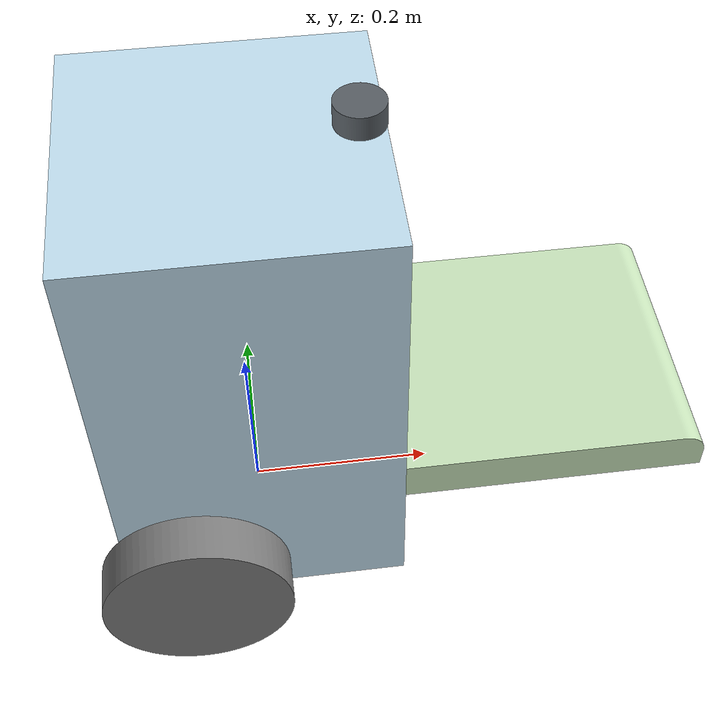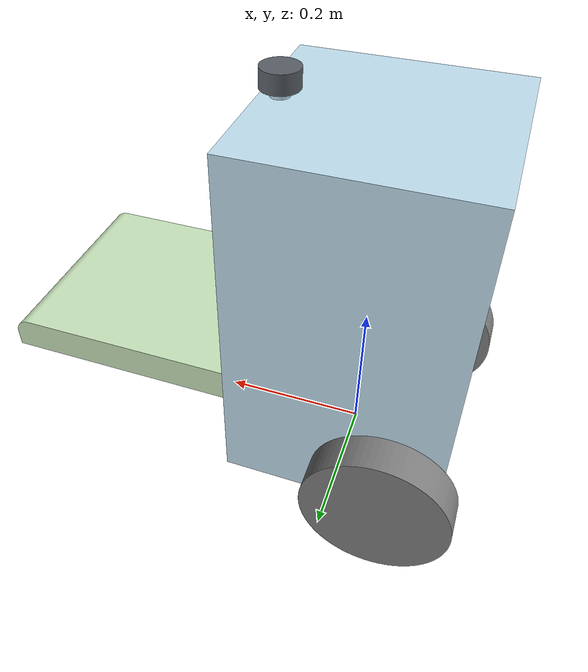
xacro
<robot name="DeliveryBot" xmlns:xacro="http://www.ros.org/wiki/xacro">
    <xacro:include filename="$(find deliverybot)/urdf/dbot_laser.gazebo"/>

    <link name="base_link">
    </link>
    <joint name="base_link_to_base" type="fixed">
        <parent link="base_link"/>
        <child link="body" />
        <origin xyz="0 0 0" rpy="0 0 1.5707" />
    </joint>
    <link name="body">
        <visual>
            <origin xyz="-5.55112e-17 -0.00273569 -0.05" rpy="0 -0 0" />
            <geometry>
                <mesh filename="package://deliverybot/urdf/meshes/body.stl"/>
            </geometry>
            <material name="body_material">
                <color rgba="0.768627 0.886275 0.952941 1.0"/>
            </material>
        </visual>
        <collision>
            <origin xyz="-5.55112e-17 -0.00273569 -0.05" rpy="0 -0 0" />
            <geometry>
                <mesh filename="package://deliverybot/urdf/meshes/body.stl"/>
            </geometry>
            <material name="body_material">
                <color rgba="0.768627 0.886275 0.952941 1.0"/>
            </material>
        </collision>
        <inertial>
            <origin xyz="7.95747e-17 0.0121391 0.137455" rpy="0 0 0"/>
            <mass value="9.21638" />
            <inertia ixx="0.266181" ixy="-3.31633e-16" ixz="-1.63779e-16" iyy="0.281274" iyz="-0.0141244" izz="0.161564" />
        </inertial>
    </link>

    <link name="left_wheel">
        <visual>
            <origin xyz="-0.075 -0.1 0.155" rpy="-1.5708 -1.5708 0" />
            <geometry>
                <mesh filename="package://deliverybot/urdf/meshes/left_wheel.stl"/>
            </geometry>
            <material name="left_wheel_material">
                <color rgba="0.498039 0.498039 0.498039 1.0"/>
            </material>
        </visual>
        <collision>
            <origin xyz="-0.075 -0.1 0.155" rpy="-1.5708 -1.5708 0" />
            <geometry>
                <mesh filename="package://deliverybot/urdf/meshes/left_wheel.stl"/>
            </geometry>
            <material name="left_wheel_material">
                <color rgba="0.498039 0.498039 0.498039 1.0"/>
            </material>
        </collision>
        <inertial>
            <origin xyz="8.32667e-18 0 -0.025" rpy="0 0 0"/>
            <mass value="1.65248" />
            <inertia ixx="0.00447546" ixy="-1.05108e-18" ixz="0" iyy="0.00826239" iyz="0" izz="0.00447546" />
        </inertial>
    </link>

    <joint name="joint_left_wheel" type="continuous">
        <origin xyz="0.155 0.0722643 0.05" rpy="0 -1.5708 0" /> <!-- rpy="-1.5708" -->
        <parent link="body" />
        <child link="left_wheel" />
        <axis xyz="0 0 -1"/>
        <limit effort="1" velocity="20" />
        <joint_properties friction="0.0"/>
    </joint>

    <link name="right_wheel">
        <visual>
            <origin xyz="-0.075 -0.1 -0.155" rpy="-1.5708 -1.5708 0" />
            <geometry>
                <mesh filename="package://deliverybot/urdf/meshes/right_wheel.stl"/>
            </geometry>
            <material name="left_wheel_material">
                <color rgba="0.498039 0.498039 0.498039 1.0"/>
            </material>
        </visual>
        <collision>
            <origin xyz="-0.075 -0.1 -0.155" rpy="-1.5708 -1.5708 0" />
            <geometry>
                <mesh filename="package://deliverybot/urdf/meshes/right_wheel.stl"/>
            </geometry>
            <material name="right_wheel_material">
                <color rgba="0.498039 0.498039 0.498039 1.0"/>
            </material>
        </collision>
        <inertial>
            <origin xyz="8.32667e-18 0 -0.025" rpy="0 0 0"/>
            <mass value="1.65248" />
            <inertia ixx="0.00447546" ixy="-1.05108e-18" ixz="0" iyy="0.00826239" iyz="0" izz="0.00447546" />
        </inertial>
    </link>

    <joint name="joint_right_wheel" type="continuous">
        <origin xyz="-0.155 0.0722643 0.05" rpy="0 -1.5708 0" /> <!-- rpy="-1.5708" -->
        <parent link="body" />
        <child link="right_wheel" />
        <axis xyz="0 0 -1"/>
        <limit effort="1" velocity="20" />
        <joint_properties friction="0.0"/>
    </joint>

    <link name="castor">
        <visual>
            <origin xyz="0 0.125 -0.025" rpy="0 -0 0" />
            <geometry>
                <mesh filename="package://deliverybot/urdf/meshes/castor.stl"/>
            </geometry>
            <material name="castor_material">
                <color rgba="0.960784 0.835294 0.470588 1.0"/>
            </material>
        </visual>
        <collision>
            <origin xyz="0 0.125 -0.025" rpy="0 -0 0" />
            <geometry>
                <mesh filename="package://deliverybot/urdf/meshes/castor.stl"/>
            </geometry>
            <material name="castor_material">
                <color rgba="0.960784 0.835294 0.470588 1.0"/>
            </material>
        </collision>
        <inertial>
            <origin xyz="0 0 3.46945e-18" rpy="0 0 0"/>
            <mass value="0.0688532" />
            <inertia ixx="1.72133e-05" ixy="0" ixz="0" iyy="1.72133e-05" iyz="0" izz="1.72133e-05" />
        </inertial>
    </link>

    <joint name="joint_castor" type="fixed">
        <origin xyz="-5.55112e-17 -0.127736 -0.025" rpy="0 -0 0" />
        <parent link="body" />
        <child link="castor" />
        <axis xyz="0 0 1"/>
        <limit effort="1" velocity="20" />
        <joint_properties friction="0.0"/>
    </joint>

    <link name="door">
        <visual>
            <origin xyz="0.127 -0.205 -0.145" rpy="-1.5708 -1.5708 0" />
            <geometry>
                <mesh filename="package://deliverybot/urdf/meshes/door.stl"/>
            </geometry>
            <material name="door_material">
                <color rgba="0.796078 0.905882 0.745098 1.0"/>
            </material>
        </visual>
        <collision>
            <origin xyz="0.127 -0.205 -0.145" rpy="-1.5708 -1.5708 0" />
            <geometry>
                <mesh filename="package://deliverybot/urdf/meshes/door.stl"/>
            </geometry>
            <material name="door_material">
                <color rgba="0.796078 0.905882 0.745098 1.0"/>
            </material>
        </collision>
        <inertial>
            <origin xyz="-0.000258506 0.145116 -0.145" rpy="0 0 0"/>
            <mass value="0.596718" />
            <inertia ixx="0.00521211" ixy="0" ixz="2.98715e-05" iyy="0.00816722" iyz="0" izz="0.0129235" />
        </inertial>
    </link>

    <joint name="joint_door" type="revolute">
        <origin xyz="0.145 -0.129736 0.155" rpy="-3.14159 -1.5708 0" />
        <parent link="body" />
        <child link="door" />
        <axis xyz="0 0 1"/>
        <limit effort="1" velocity="20" lower="-1.5708" upper="0.523599"/>
        <joint_properties friction="0.0"/>
    </joint>

    <link name="sensor_laser">
        <visual>
            <origin xyz="0 -0.125 0.56" rpy="3.14159 0 0" />
            <geometry>
                <mesh filename="package://deliverybot/urdf/meshes/sensor_laser.stl"/>
            </geometry>
            <material name="sensor_laser_material">
                <color rgba="0.34902 0.376471 0.4 1.0"/>
            </material>
        </visual>
        <collision>
            <origin xyz="0 -0.125 0.56" rpy="3.14159 0 0" />
            <geometry>
                <mesh filename="package://deliverybot/urdf/meshes/sensor_laser.stl"/>
            </geometry>
            <material name="sensor_laser_material">
                <color rgba="0.34902 0.376471 0.4 1.0"/>
            </material>
        </collision>
        <inertial>
            <origin xyz="3.75509e-19 0 -0.0125" rpy="0 0 0"/>
            <mass value="0.0516399" />
            <inertia ixx="1.07583e-05" ixy="0" ixz="0" iyy="1.07583e-05" iyz="0" izz="1.61375e-05" />
        </inertial>
    </link>

    <joint name="joint_laser_sensor" type="fixed">
        <origin xyz="-5.55112e-17 -0.127736 0.535" rpy="0 0 3.14159" />
        <parent link="body" />
        <child link="sensor_laser" />
        <axis xyz="0 0 1"/>
        <limit effort="1" velocity="20" />
        <joint_properties friction="0.0"/>
    </joint>

</robot>
